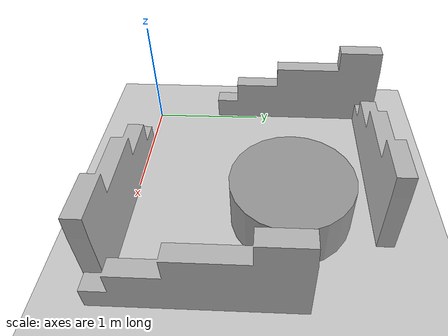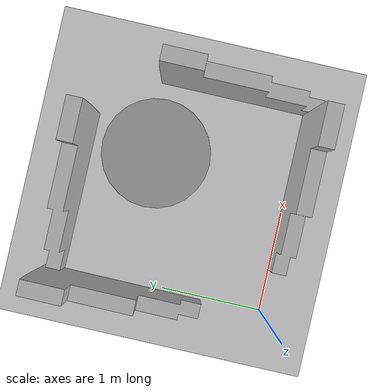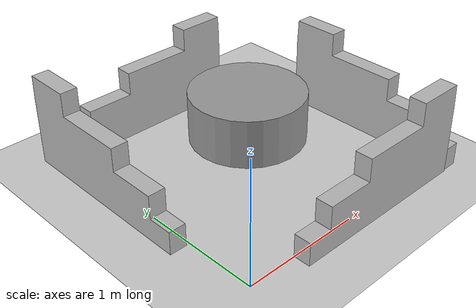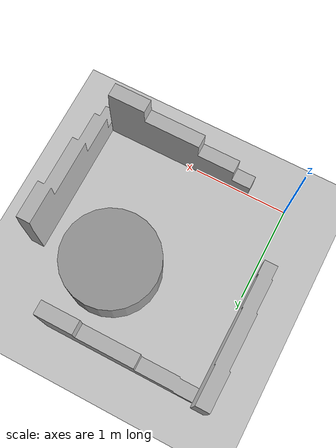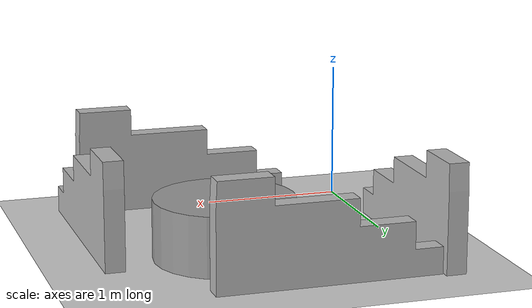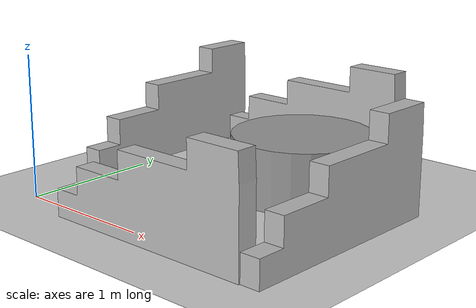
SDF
<sdf version="1.6">
 <world name="default">
  <light name="sun" type="directional">
   <pose>0 0 10 0 -0 0</pose>
   <diffuse>0.8 0.8 0.8 1</diffuse>
   <specular>0.2 0.2 0.2 1</specular>
   <attenuation>
    <range>1000</range>
    <constant>0.9</constant>
    <linear>0.01</linear>
    <quadratic>0.001</quadratic>
   </attenuation>
   <direction>-0.5 0.1 -0.9</direction>
  </light>
  <model name="ground_plane">
   <static>1</static>
   <link name="link">
    <collision name="collision">
     <geometry><plane><normal>0 0 1</normal><size>100 100</size></plane></geometry>
     <surface><friction><ode><mu>100</mu><mu2>50</mu2></ode></friction></surface>
    </collision>
    <visual name="visual">
     <cast_shadows>0</cast_shadows>
     <geometry><plane><normal>0 0 1</normal><size>100 100</size></plane></geometry>
     <material>
      <script><uri>file://media/materials/scripts/gazebo.material</uri><name>Gazebo/Grey</name></script>
     </material>
    </visual>
   </link>
  </model>
  <gravity>0 0 -9.8</gravity>
  <magnetic_field>6e-06 2.3e-05 -4.2e-05</magnetic_field>
  <atmosphere type="adiabatic"/>
  <physics name="default_physics" default="0" type="ode">
   <max_step_size>0.001</max_step_size>
   <real_time_factor>1</real_time_factor>
   <real_time_update_rate>1000</real_time_update_rate>
  </physics>
  <scene><ambient>0.4 0.4 0.4 1</ambient><background>0.7 0.7 0.7 1</background><shadows>1</shadows></scene>
  <audio><device>default</device></audio>
  <spherical_coordinates>
   <surface_model>EARTH_WGS84</surface_model>
   <latitude_deg>0</latitude_deg>
   <longitude_deg>0</longitude_deg>
   <elevation>0</elevation>
   <heading_deg>0</heading_deg>
  </spherical_coordinates>
  <model name="block_wall">
   <pose>0.927734 2.07238 0.30924 0 -0 0</pose>
   <static>1</static>
   <link name="blocks">
    <collision name="collision">
     <geometry><mesh><uri>model://drc_practice_block_wall/meshes/block_wall.dae</uri></mesh></geometry>
     <surface>
      <bounce><restitution_coefficient>0</restitution_coefficient><threshold>100000</threshold></bounce>
      <friction><ode><mu>100</mu><mu2>50</mu2></ode></friction>
      <contact>
       <ode><soft_cfm>0</soft_cfm><soft_erp>0.2</soft_erp><max_vel>0</max_vel><min_depth>0</min_depth></ode>
      </contact>
     </surface>
    </collision>
    <visual name="visual">
     <geometry><mesh><uri>model://drc_practice_block_wall/meshes/block_wall.dae</uri></mesh></geometry>
    </visual>
   </link>
  </model>
  <model name="block_wall_0">
   <pose>1.3602 -0.064767 0.30924 0 -0 0</pose>
   <static>1</static>
   <link name="blocks">
    <collision name="collision">
     <geometry><mesh><uri>model://drc_practice_block_wall/meshes/block_wall.dae</uri></mesh></geometry>
     <surface>
      <bounce><restitution_coefficient>0</restitution_coefficient><threshold>100000</threshold></bounce>
      <friction><ode><mu>100</mu><mu2>50</mu2></ode></friction>
      <contact>
       <ode><soft_cfm>0</soft_cfm><soft_erp>0.2</soft_erp><max_vel>0</max_vel><min_depth>0</min_depth></ode>
      </contact>
     </surface>
    </collision>
    <visual name="visual">
     <geometry><mesh><uri>model://drc_practice_block_wall/meshes/block_wall.dae</uri></mesh></geometry>
    </visual>
   </link>
  </model>
  <model name="block_wall_1">
   <pose>2.08005 0.814318 0.30924 0 -0 1.5698</pose>
   <static>1</static>
   <link name="blocks">
    <collision name="collision">
     <geometry><mesh><uri>model://drc_practice_block_wall/meshes/block_wall.dae</uri></mesh></geometry>
     <surface>
      <bounce><restitution_coefficient>0</restitution_coefficient><threshold>100000</threshold></bounce>
      <friction><ode><mu>100</mu><mu2>50</mu2></ode></friction>
      <contact>
       <ode><soft_cfm>0</soft_cfm><soft_erp>0.2</soft_erp><max_vel>0</max_vel><min_depth>0</min_depth></ode>
      </contact>
     </surface>
    </collision>
    <visual name="visual">
     <geometry><mesh><uri>model://drc_practice_block_wall/meshes/block_wall.dae</uri></mesh></geometry>
    </visual>
   </link>
  </model>
  <model name="block_wall_2">
   <pose>-0.095989 1.54329 0.30924 0 -0 1.56473</pose>
   <static>1</static>
   <link name="blocks">
    <collision name="collision">
     <geometry><mesh><uri>model://drc_practice_block_wall/meshes/block_wall.dae</uri></mesh></geometry>
     <surface>
      <bounce><restitution_coefficient>0</restitution_coefficient><threshold>100000</threshold></bounce>
      <friction><ode><mu>100</mu><mu2>50</mu2></ode></friction>
      <contact>
       <ode><soft_cfm>0</soft_cfm><soft_erp>0.2</soft_erp><max_vel>0</max_vel><min_depth>0</min_depth></ode>
      </contact>
     </surface>
    </collision>
    <visual name="visual">
     <geometry><mesh><uri>model://drc_practice_block_wall/meshes/block_wall.dae</uri></mesh></geometry>
    </visual>
   </link>
  </model>
  <light name="user_point_light_0" type="point">
   <pose>1.82159 1.83013 1 0 -0 0</pose>
   <diffuse>0.5 0.5 0.5 1</diffuse>
   <specular>0.1 0.1 0.1 1</specular>
   <attenuation>
    <range>20</range>
    <constant>0.5</constant>
    <linear>0.01</linear>
    <quadratic>0.001</quadratic>
   </attenuation>
   <cast_shadows>0</cast_shadows>
   <direction>0 0 -1</direction>
  </light>
  <light name="user_point_light_1" type="point">
   <pose>1.8784 0.161289 1 0 -0 0</pose>
   <diffuse>0.5 0.5 0.5 1</diffuse>
   <specular>0.1 0.1 0.1 1</specular>
   <attenuation>
    <range>20</range>
    <constant>0.5</constant>
    <linear>0.01</linear>
    <quadratic>0.001</quadratic>
   </attenuation>
   <cast_shadows>0</cast_shadows>
   <direction>0 0 -1</direction>
  </light>
  <light name="user_point_light_2" type="point">
   <pose>0.200522 1.77521 1 0 -0 0</pose>
   <diffuse>0.5 0.5 0.5 1</diffuse>
   <specular>0.1 0.1 0.1 1</specular>
   <attenuation>
    <range>20</range>
    <constant>0.5</constant>
    <linear>0.01</linear>
    <quadratic>0.001</quadratic>
   </attenuation>
   <cast_shadows>0</cast_shadows>
   <direction>0 0 -1</direction>
  </light>
  <light name="user_point_light_3" type="point">
   <pose>0.242306 0.09739 1 0 -0 0</pose>
   <diffuse>0.5 0.5 0.5 1</diffuse>
   <specular>0.1 0.1 0.1 1</specular>
   <attenuation>
    <range>20</range>
    <constant>0.5</constant>
    <linear>0.01</linear>
    <quadratic>0.001</quadratic>
   </attenuation>
   <cast_shadows>0</cast_shadows>
   <direction>0 0 -1</direction>
  </light>
  <model name="unit_cylinder">
   <pose>1.27659 1.33216 0.177537 -0 -0 -0</pose>
   <link name="link">
    <inertial>
     <mass>1</mass>
     <inertia><ixx>0.145833</ixx><ixy>0</ixy><ixz>0</ixz><iyy>0.145833</iyy><iyz>0</iyz><izz>0.125</izz></inertia>
    </inertial>
    <collision name="collision">
     <geometry><cylinder><radius>0.5</radius><length>0.5</length></cylinder></geometry>
    </collision>
    <visual name="visual">
     <geometry><cylinder><radius>0.5</radius><length>0.5</length></cylinder></geometry>
     <material>
      <script><name>Gazebo/Grey</name><uri>file://media/materials/scripts/gazebo.material</uri></script>
     </material>
    </visual>
   </link>
  </model>
 </world>
</sdf>
